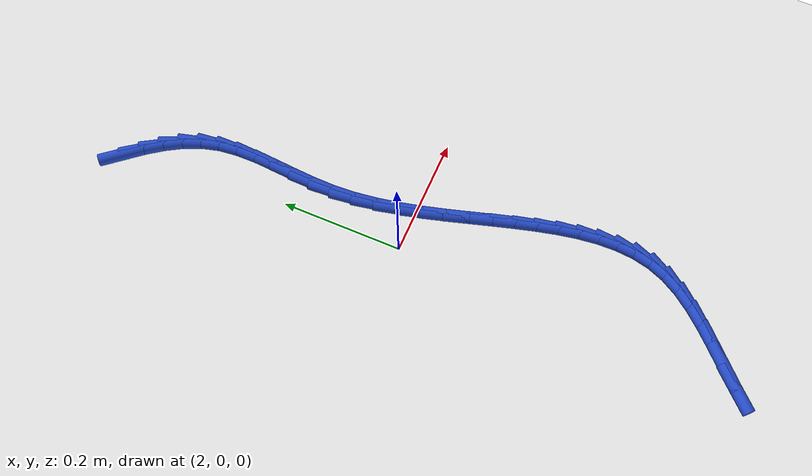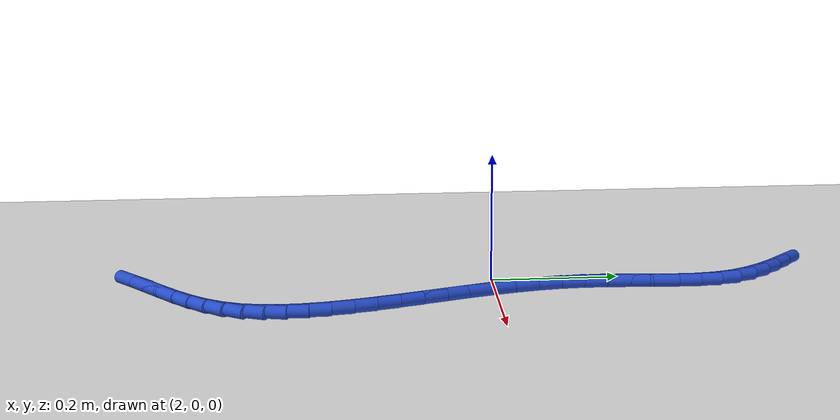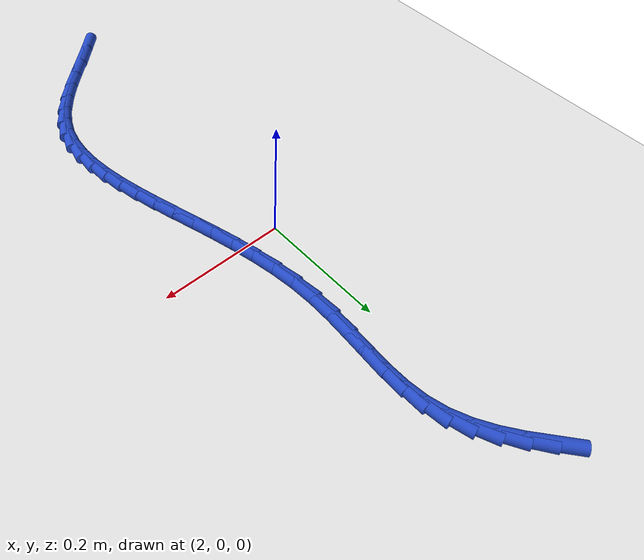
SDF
<sdf version="1.6">
 <world name="default">
  <model name="ground_plane">
   <static>1</static>
   <link name="link">
    <collision name="collision">
     <geometry><plane><normal>0 0 1</normal><size>100 100</size></plane></geometry>
     <surface><friction><ode><mu>100</mu><mu2>50</mu2></ode></friction></surface>
    </collision>
    <visual name="visual">
     <cast_shadows>0</cast_shadows>
     <geometry><plane><normal>0 0 1</normal><size>100 100</size></plane></geometry>
     <material>
      <script><uri>file://media/materials/scripts/gazebo.material</uri><name>Gazebo/WhiteGlow</name></script>
     </material>
    </visual>
   </link>
  </model>
  <model name="line">
   <link name="link_83">
    <pose>1.9722498517516673 0.48119916152248415 0.01 0 1.57 -0.8681680627093928</pose>
    <collision name="collision">
     <geometry><cylinder><radius>0.01</radius><length>0.08</length></cylinder></geometry>
    </collision>
    <visual name="visual">
     <material>
      <script><name>Gazebo/Blue</name><uri>file://media/materials/scripts/gazebo.material</uri></script>
     </material>
     <geometry><cylinder><radius>0.01</radius><length>0.08</length></cylinder></geometry>
    </visual>
   </link>
   <link name="link_84">
    <pose>1.9941752769181185 0.45530679984272565 0.01 0 1.57 -0.9359148114598306</pose>
    <collision name="collision">
     <geometry><cylinder><radius>0.01</radius><length>0.08</length></cylinder></geometry>
    </collision>
    <visual name="visual">
     <material>
      <script><name>Gazebo/Blue</name><uri>file://media/materials/scripts/gazebo.material</uri></script>
     </material>
     <geometry><cylinder><radius>0.01</radius><length>0.08</length></cylinder></geometry>
    </visual>
   </link>
   <link name="link_85">
    <pose>2.013650489284007 0.4288681156463754 0.01 0 1.57 -1.031762954885597</pose>
    <collision name="collision">
     <geometry><cylinder><radius>0.01</radius><length>0.08</length></cylinder></geometry>
    </collision>
    <visual name="visual">
     <material>
      <script><name>Gazebo/Blue</name><uri>file://media/materials/scripts/gazebo.material</uri></script>
     </material>
     <geometry><cylinder><radius>0.01</radius><length>0.08</length></cylinder></geometry>
    </visual>
   </link>
   <link name="link_86">
    <pose>2.0299799236264517 0.40156668484945823 0.01 0 1.57 -1.1575660694457235</pose>
    <collision name="collision">
     <geometry><cylinder><radius>0.01</radius><length>0.08</length></cylinder></geometry>
    </collision>
    <visual name="visual">
     <material>
      <script><name>Gazebo/Blue</name><uri>file://media/materials/scripts/gazebo.material</uri></script>
     </material>
     <geometry><cylinder><radius>0.01</radius><length>0.08</length></cylinder></geometry>
    </visual>
   </link>
   <link name="link_87">
    <pose>2.042468014722573 0.3730860833679984 0.01 0 1.57 -1.3108900914198236</pose>
    <collision name="collision">
     <geometry><cylinder><radius>0.01</radius><length>0.08</length></cylinder></geometry>
    </collision>
    <visual name="visual">
     <material>
      <script><name>Gazebo/Blue</name><uri>file://media/materials/scripts/gazebo.material</uri></script>
     </material>
     <geometry><cylinder><radius>0.01</radius><length>0.08</length></cylinder></geometry>
    </visual>
   </link>
   <link name="link_88">
    <pose>2.050437908879543 0.343115190367679 0.01 0 1.57 -1.4586157774025306</pose>
    <collision name="collision">
     <geometry><cylinder><radius>0.01</radius><length>0.08</length></cylinder></geometry>
    </collision>
    <visual name="visual">
     <material>
      <script><name>Gazebo/Blue</name><uri>file://media/materials/scripts/gazebo.material</uri></script>
     </material>
     <geometry><cylinder><radius>0.01</radius><length>0.08</length></cylinder></geometry>
    </visual>
   </link>
   <link name="link_89">
    <pose>2.0539922814052844 0.311563820282199 0.01 0 1.57 -1.56212899563433</pose>
    <collision name="collision">
     <geometry><cylinder><radius>0.01</radius><length>0.08</length></cylinder></geometry>
    </collision>
    <visual name="visual">
     <material>
      <script><name>Gazebo/Blue</name><uri>file://media/materials/scripts/gazebo.material</uri></script>
     </material>
     <geometry><cylinder><radius>0.01</radius><length>0.08</length></cylinder></geometry>
    </visual>
   </link>
   <link name="link_90">
    <pose>2.054277670653478 0.2786376407611913 0.01 0 1.57 1.5190720176206476</pose>
    <collision name="collision">
     <geometry><cylinder><radius>0.01</radius><length>0.08</length></cylinder></geometry>
    </collision>
    <visual name="visual">
     <material>
      <script><name>Gazebo/Blue</name><uri>file://media/materials/scripts/gazebo.material</uri></script>
     </material>
     <geometry><cylinder><radius>0.01</radius><length>0.08</length></cylinder></geometry>
    </visual>
   </link>
   <link name="link_91">
    <pose>2.052513610336646 0.24456300790738608 0.01 0 1.57 1.4968110872426859</pose>
    <collision name="collision">
     <geometry><cylinder><radius>0.01</radius><length>0.08</length></cylinder></geometry>
    </collision>
    <visual name="visual">
     <material>
      <script><name>Gazebo/Blue</name><uri>file://media/materials/scripts/gazebo.material</uri></script>
     </material>
     <geometry><cylinder><radius>0.01</radius><length>0.08</length></cylinder></geometry>
    </visual>
   </link>
   <link name="link_92">
    <pose>2.0499196341673116 0.20956627782351353 0.01 0 1.57 1.5091149144256064</pose>
    <collision name="collision">
     <geometry><cylinder><radius>0.01</radius><length>0.08</length></cylinder></geometry>
    </collision>
    <visual name="visual">
     <material>
      <script><name>Gazebo/Blue</name><uri>file://media/materials/scripts/gazebo.material</uri></script>
     </material>
     <geometry><cylinder><radius>0.01</radius><length>0.08</length></cylinder></geometry>
    </visual>
   </link>
   <link name="link_93">
    <pose>2.0477152758579975 0.17387380661230392 0.01 0 1.57 1.5543382945707942</pose>
    <collision name="collision">
     <geometry><cylinder><radius>0.01</radius><length>0.08</length></cylinder></geometry>
    </collision>
    <visual name="visual">
     <material>
      <script><name>Gazebo/Blue</name><uri>file://media/materials/scripts/gazebo.material</uri></script>
     </material>
     <geometry><cylinder><radius>0.01</radius><length>0.08</length></cylinder></geometry>
    </visual>
   </link>
   <link name="link_94">
    <pose>2.0471200691212283 0.13771195037648745 0.01 0 1.57 -1.5132111645813813</pose>
    <collision name="collision">
     <geometry><cylinder><radius>0.01</radius><length>0.08</length></cylinder></geometry>
    </collision>
    <visual name="visual">
     <material>
      <script><name>Gazebo/Blue</name><uri>file://media/materials/scripts/gazebo.material</uri></script>
     </material>
     <geometry><cylinder><radius>0.01</radius><length>0.08</length></cylinder></geometry>
    </visual>
   </link>
   <link name="link_95">
    <pose>2.0492193242827117 0.10129746172322959 0.01 0 1.57 -1.4400393599211647</pose>
    <collision name="collision">
     <geometry><cylinder><radius>0.01</radius><length>0.08</length></cylinder></geometry>
    </collision>
    <visual name="visual">
     <material>
      <script><name>Gazebo/Blue</name><uri>file://media/materials/scripts/gazebo.material</uri></script>
     </material>
     <geometry><cylinder><radius>0.01</radius><length>0.08</length></cylinder></geometry>
    </visual>
   </link>
   <link name="link_96">
    <pose>2.0540229325984205 0.06477014852963475 0.01 0 1.57 -1.3814746424726665</pose>
    <collision name="collision">
     <geometry><cylinder><radius>0.01</radius><length>0.08</length></cylinder></geometry>
    </collision>
    <visual name="visual">
     <material>
      <script><name>Gazebo/Blue</name><uri>file://media/materials/scripts/gazebo.material</uri></script>
     </material>
     <geometry><cylinder><radius>0.01</radius><length>0.08</length></cylinder></geometry>
    </visual>
   </link>
   <link name="link_97">
    <pose>2.061024082892148 0.02823284933658626 0.01 0 1.57 -1.3367598555480629</pose>
    <collision name="collision">
     <geometry><cylinder><radius>0.01</radius><length>0.08</length></cylinder></geometry>
    </collision>
    <visual name="visual">
     <material>
      <script><name>Gazebo/Blue</name><uri>file://media/materials/scripts/gazebo.material</uri></script>
     </material>
     <geometry><cylinder><radius>0.01</radius><length>0.08</length></cylinder></geometry>
    </visual>
   </link>
   <link name="link_98">
    <pose>2.069712683586535 -0.008211832023144799 0.01 0 1.57 -1.3050644797254614</pose>
    <collision name="collision">
     <geometry><cylinder><radius>0.01</radius><length>0.08</length></cylinder></geometry>
    </collision>
    <visual name="visual">
     <material>
      <script><name>Gazebo/Blue</name><uri>file://media/materials/scripts/gazebo.material</uri></script>
     </material>
     <geometry><cylinder><radius>0.01</radius><length>0.08</length></cylinder></geometry>
    </visual>
   </link>
   <link name="link_99">
    <pose>2.079578643104222 -0.04446129171678792 0.01 0 1.57 -1.2857892807922395</pose>
    <collision name="collision">
     <geometry><cylinder><radius>0.01</radius><length>0.08</length></cylinder></geometry>
    </collision>
    <visual name="visual">
     <material>
      <script><name>Gazebo/Blue</name><uri>file://media/materials/scripts/gazebo.material</uri></script>
     </material>
     <geometry><cylinder><radius>0.01</radius><length>0.08</length></cylinder></geometry>
    </visual>
   </link>
   <link name="link_100">
    <pose>2.09011186986785 -0.08041292591157234 0.01 0 1.57 -1.2786934525549167</pose>
    <collision name="collision">
     <geometry><cylinder><radius>0.01</radius><length>0.08</length></cylinder></geometry>
    </collision>
    <visual name="visual">
     <material>
      <script><name>Gazebo/Blue</name><uri>file://media/materials/scripts/gazebo.material</uri></script>
     </material>
     <geometry><cylinder><radius>0.01</radius><length>0.08</length></cylinder></geometry>
    </visual>
   </link>
   <link name="link_101">
    <pose>2.1008022723000597 -0.11596413077472753 0.01 0 1.57 -1.283978232663764</pose>
    <collision name="collision">
     <geometry><cylinder><radius>0.01</radius><length>0.08</length></cylinder></geometry>
    </collision>
    <visual name="visual">
     <material>
      <script><name>Gazebo/Blue</name><uri>file://media/materials/scripts/gazebo.material</uri></script>
     </material>
     <geometry><cylinder><radius>0.01</radius><length>0.08</length></cylinder></geometry>
    </visual>
   </link>
   <link name="link_102">
    <pose>2.111139758823493 -0.15101230247348277 0.01 0 1.57 -1.3023550243018276</pose>
    <collision name="collision">
     <geometry><cylinder><radius>0.01</radius><length>0.08</length></cylinder></geometry>
    </collision>
    <visual name="visual">
     <material>
      <script><name>Gazebo/Blue</name><uri>file://media/materials/scripts/gazebo.material</uri></script>
     </material>
     <geometry><cylinder><radius>0.01</radius><length>0.08</length></cylinder></geometry>
    </visual>
   </link>
   <link name="link_103">
    <pose>2.1206142378607895 -0.1854548371750675 0.01 0 1.57 -1.335107017514242</pose>
    <collision name="collision">
     <geometry><cylinder><radius>0.01</radius><length>0.08</length></cylinder></geometry>
    </collision>
    <visual name="visual">
     <material>
      <script><name>Gazebo/Blue</name><uri>file://media/materials/scripts/gazebo.material</uri></script>
     </material>
     <geometry><cylinder><radius>0.01</radius><length>0.08</length></cylinder></geometry>
    </visual>
   </link>
   <link name="link_104">
    <pose>2.1287156178345907 -0.21918913104671106 0.01 0 1.57 -1.3841270677325213</pose>
    <collision name="collision">
     <geometry><cylinder><radius>0.01</radius><length>0.08</length></cylinder></geometry>
    </collision>
    <visual name="visual">
     <material>
      <script><name>Gazebo/Blue</name><uri>file://media/materials/scripts/gazebo.material</uri></script>
     </material>
     <geometry><cylinder><radius>0.01</radius><length>0.08</length></cylinder></geometry>
    </visual>
   </link>
   <link name="link_105">
    <pose>2.1349338071675388 -0.2521125802556429 0.01 0 1.57 -1.4518692017173862</pose>
    <collision name="collision">
     <geometry><cylinder><radius>0.01</radius><length>0.08</length></cylinder></geometry>
    </collision>
    <visual name="visual">
     <material>
      <script><name>Gazebo/Blue</name><uri>file://media/materials/scripts/gazebo.material</uri></script>
     </material>
     <geometry><cylinder><radius>0.01</radius><length>0.08</length></cylinder></geometry>
    </visual>
   </link>
   <link name="link_106">
    <pose>2.1387587142822726 -0.2841225809690924 0.01 0 1.57 -1.5410723982234753</pose>
    <collision name="collision">
     <geometry><cylinder><radius>0.01</radius><length>0.08</length></cylinder></geometry>
    </collision>
    <visual name="visual">
     <material>
      <script><name>Gazebo/Blue</name><uri>file://media/materials/scripts/gazebo.material</uri></script>
     </material>
     <geometry><cylinder><radius>0.01</radius><length>0.08</length></cylinder></geometry>
    </visual>
   </link>
   <link name="link_107">
    <pose>2.1396802476014343 -0.3151165293542887 0.01 0 1.57 1.4875778296060802</pose>
    <collision name="collision">
     <geometry><cylinder><radius>0.01</radius><length>0.08</length></cylinder></geometry>
    </collision>
    <visual name="visual">
     <material>
      <script><name>Gazebo/Blue</name><uri>file://media/materials/scripts/gazebo.material</uri></script>
     </material>
     <geometry><cylinder><radius>0.01</radius><length>0.08</length></cylinder></geometry>
    </visual>
   </link>
   <link name="link_108">
    <pose>2.1371883155476645 -0.3449918215784614 0.01 0 1.57 1.3505340721016188</pose>
    <collision name="collision">
     <geometry><cylinder><radius>0.01</radius><length>0.08</length></cylinder></geometry>
    </collision>
    <visual name="visual">
     <material>
      <script><name>Gazebo/Blue</name><uri>file://media/materials/scripts/gazebo.material</uri></script>
     </material>
     <geometry><cylinder><radius>0.01</radius><length>0.08</length></cylinder></geometry>
    </visual>
   </link>
   <link name="link_109">
    <pose>2.1307728265436046 -0.37364585380883997 0.01 0 1.57 1.193020575264305</pose>
    <collision name="collision">
     <geometry><cylinder><radius>0.01</radius><length>0.08</length></cylinder></geometry>
    </collision>
    <visual name="visual">
     <material>
      <script><name>Gazebo/Blue</name><uri>file://media/materials/scripts/gazebo.material</uri></script>
     </material>
     <geometry><cylinder><radius>0.01</radius><length>0.08</length></cylinder></geometry>
    </visual>
   </link>
   <link name="link_110">
    <pose>2.119926809399979 -0.4009770920630132 0.01 0 1.57 1.0378330119150283</pose>
    <collision name="collision">
     <geometry><cylinder><radius>0.01</radius><length>0.08</length></cylinder></geometry>
    </collision>
    <visual name="visual">
     <material>
      <script><name>Gazebo/Blue</name><uri>file://media/materials/scripts/gazebo.material</uri></script>
     </material>
     <geometry><cylinder><radius>0.01</radius><length>0.08</length></cylinder></geometry>
    </visual>
   </link>
   <link name="link_111">
    <pose>2.104559937005867 -0.42702685215961445 0.01 0 1.57 0.9190317664332098</pose>
    <collision name="collision">
     <geometry><cylinder><radius>0.01</radius><length>0.08</length></cylinder></geometry>
    </collision>
    <visual name="visual">
     <material>
      <script><name>Gazebo/Blue</name><uri>file://media/materials/scripts/gazebo.material</uri></script>
     </material>
     <geometry><cylinder><radius>0.01</radius><length>0.08</length></cylinder></geometry>
    </visual>
   </link>
   <link name="link_112">
    <pose>2.0854129858076838 -0.45212140051175703 0.01 0 1.57 0.8371213687278565</pose>
    <collision name="collision">
     <geometry><cylinder><radius>0.01</radius><length>0.08</length></cylinder></geometry>
    </collision>
    <visual name="visual">
     <material>
      <script><name>Gazebo/Blue</name><uri>file://media/materials/scripts/gazebo.material</uri></script>
     </material>
     <geometry><cylinder><radius>0.01</radius><length>0.08</length></cylinder></geometry>
    </visual>
   </link>
   <link name="link_113">
    <pose>2.0633253526186333 -0.4766208163250703 0.01 0 1.57 0.7869552107450904</pose>
    <collision name="collision">
     <geometry><cylinder><radius>0.01</radius><length>0.08</length></cylinder></geometry>
    </collision>
    <visual name="visual">
     <material>
      <script><name>Gazebo/Blue</name><uri>file://media/materials/scripts/gazebo.material</uri></script>
     </material>
     <geometry><cylinder><radius>0.01</radius><length>0.08</length></cylinder></geometry>
    </visual>
   </link>
   <link name="link_114">
    <pose>2.0391364342519163 -0.5008851788051832 0.01 0 1.57 0.7641049490357975</pose>
    <collision name="collision">
     <geometry><cylinder><radius>0.01</radius><length>0.08</length></cylinder></geometry>
    </collision>
    <visual name="visual">
     <material>
      <script><name>Gazebo/Blue</name><uri>file://media/materials/scripts/gazebo.material</uri></script>
     </material>
     <geometry><cylinder><radius>0.01</radius><length>0.08</length></cylinder></geometry>
    </visual>
   </link>
   <link name="link_115">
    <pose>2.0136856275207373 -0.5252745671577254 0.01 0 1.57 0.7657189639922186</pose>
    <collision name="collision">
     <geometry><cylinder><radius>0.01</radius><length>0.08</length></cylinder></geometry>
    </collision>
    <visual name="visual">
     <material>
      <script><name>Gazebo/Blue</name><uri>file://media/materials/scripts/gazebo.material</uri></script>
     </material>
     <geometry><cylinder><radius>0.01</radius><length>0.08</length></cylinder></geometry>
    </visual>
   </link>
   <link name="link_116">
    <pose>1.987812329238298 -0.5501490605883252 0.01 0 1.57 0.7905428016472054</pose>
    <collision name="collision">
     <geometry><cylinder><radius>0.01</radius><length>0.08</length></cylinder></geometry>
    </collision>
    <visual name="visual">
     <material>
      <script><name>Gazebo/Blue</name><uri>file://media/materials/scripts/gazebo.material</uri></script>
     </material>
     <geometry><cylinder><radius>0.01</radius><length>0.08</length></cylinder></geometry>
    </visual>
   </link>
  </model>
 </world>
</sdf>
